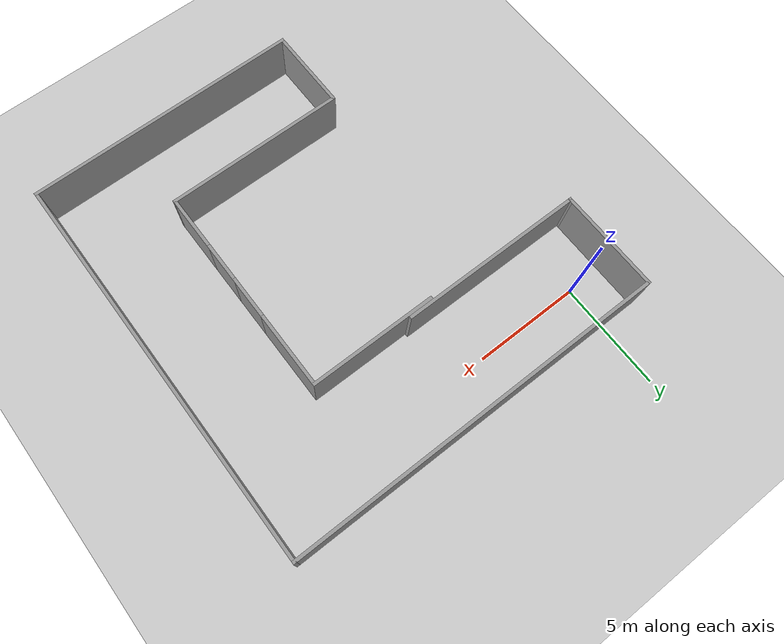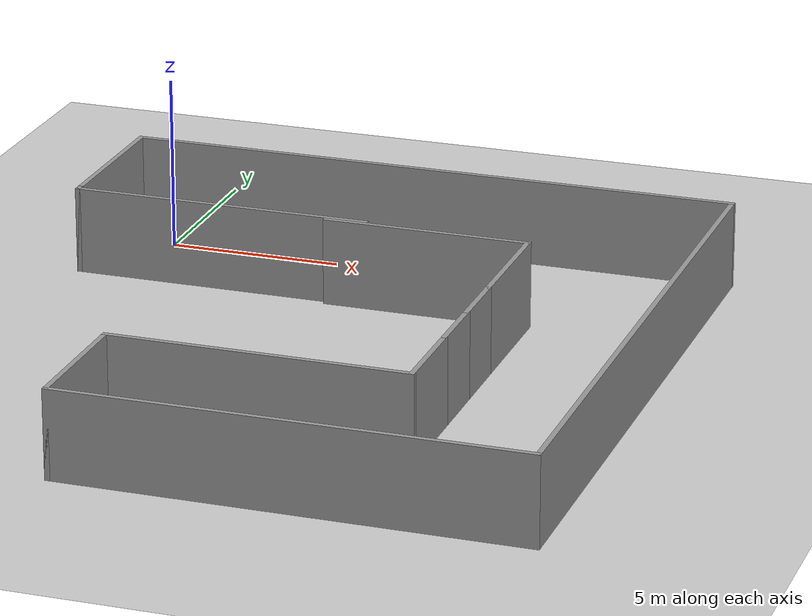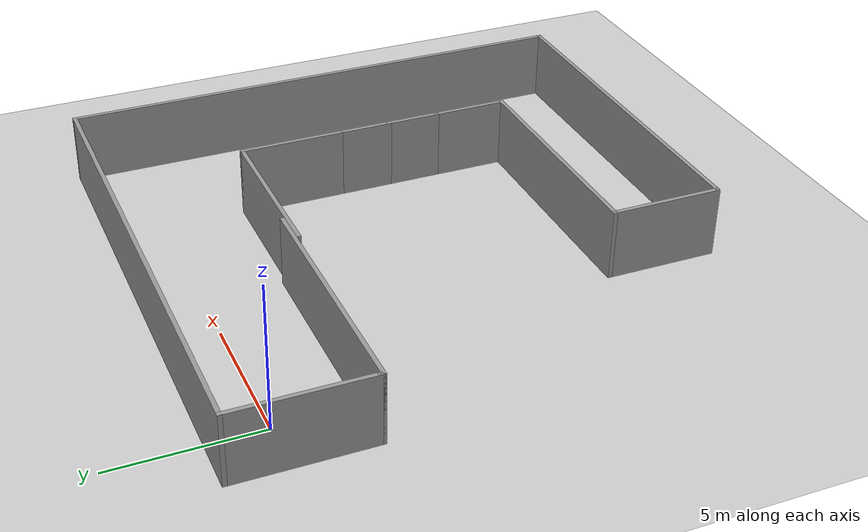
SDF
<sdf version="1.7">
 <world name="default">
  <light name="sun" type="directional">
   <pose>0 0 10 0 -0 0</pose>
   <diffuse>0.8 0.8 0.8 1</diffuse>
   <specular>0.2 0.2 0.2 1</specular>
   <attenuation>
    <range>1000</range>
    <constant>0.9</constant>
    <linear>0.01</linear>
    <quadratic>0.001</quadratic>
   </attenuation>
   <direction>-0.5 0.1 -0.9</direction>
   <spot><inner_angle>0</inner_angle><outer_angle>0</outer_angle><falloff>0</falloff></spot>
  </light>
  <model name="ground_plane">
   <static>1</static>
   <link name="link">
    <collision name="collision">
     <geometry><plane><normal>0 0 1</normal><size>100 100</size></plane></geometry>
     <surface><friction><ode><mu>100</mu><mu2>50</mu2></ode></friction></surface>
    </collision>
    <visual name="visual">
     <cast_shadows>0</cast_shadows>
     <geometry><plane><normal>0 0 1</normal><size>100 100</size></plane></geometry>
     <material>
      <script><uri>file://media/materials/scripts/gazebo.material</uri><name>Gazebo/Grey</name></script>
     </material>
    </visual>
   </link>
  </model>
  <gravity>0 0 -9.8</gravity>
  <magnetic_field>6e-06 2.3e-05 -4.2e-05</magnetic_field>
  <atmosphere type="adiabatic"/>
  <physics type="ode">
   <max_step_size>0.001</max_step_size>
   <real_time_factor>1</real_time_factor>
   <real_time_update_rate>1000</real_time_update_rate>
  </physics>
  <scene><ambient>0.4 0.4 0.4 1</ambient><background>0.7 0.7 0.7 1</background><shadows>1</shadows></scene>
  <spherical_coordinates>
   <surface_model>EARTH_WGS84</surface_model>
   <latitude_deg>0</latitude_deg>
   <longitude_deg>0</longitude_deg>
   <elevation>0</elevation>
   <heading_deg>0</heading_deg>
  </spherical_coordinates>
  <model name="coriddor">
   <pose>7.16406 -7.36954 0 0 -0 0</pose>
   <link name="Wall_0">
    <collision name="Wall_0_Collision">
     <geometry><box><size>6 0.15 2.5</size></box></geometry>
     <pose>0 0 1.25 0 -0 0</pose>
    </collision>
    <visual name="Wall_0_Visual">
     <pose>0 0 1.25 0 -0 0</pose>
     <geometry><box><size>6 0.15 2.5</size></box></geometry>
     <material>
      <script><uri>file://media/materials/scripts/gazebo.material</uri><name>Gazebo/Grey</name></script>
      <ambient>1 1 1 1</ambient>
     </material>
     <meta><layer>0</layer></meta>
    </visual>
    <pose>1.5 4.45 0 0 -0 0</pose>
   </link>
   <link name="Wall_1">
    <collision name="Wall_1_Collision">
     <geometry><box><size>3.75 0.15 2.5</size></box></geometry>
     <pose>0 0 1.25 0 -0 0</pose>
    </collision>
    <visual name="Wall_1_Visual">
     <pose>0 0 1.25 0 -0 0</pose>
     <geometry><box><size>3.75 0.15 2.5</size></box></geometry>
     <material>
      <script><uri>file://media/materials/scripts/gazebo.material</uri><name>Gazebo/Grey</name></script>
      <ambient>1 1 1 1</ambient>
     </material>
     <meta><layer>0</layer></meta>
    </visual>
    <pose>4.425 2.65 0 0 -0 -1.5708</pose>
   </link>
   <link name="Wall_10">
    <collision name="Wall_10_Collision">
     <geometry><box><size>4.75 0.15 2.5</size></box></geometry>
     <pose>0 0 1.25 0 -0 0</pose>
    </collision>
    <visual name="Wall_10_Visual">
     <pose>0 0 1.25 0 -0 0</pose>
     <geometry><box><size>4.75 0.15 2.5</size></box></geometry>
     <material>
      <script><uri>file://media/materials/scripts/gazebo.material</uri><name>Gazebo/Grey</name></script>
      <ambient>1 1 1 1</ambient>
     </material>
     <meta><layer>0</layer></meta>
    </visual>
    <pose>-8.925 7 0 0 -0 -1.5708</pose>
   </link>
   <link name="Wall_11">
    <collision name="Wall_11_Collision">
     <geometry><box><size>0.15 0.15 2.5</size></box></geometry>
     <pose>0 0 1.25 0 -0 0</pose>
    </collision>
    <visual name="Wall_11_Visual">
     <pose>0 0 1.25 0 -0 0</pose>
     <geometry><box><size>0.15 0.15 2.5</size></box></geometry>
     <material>
      <script><uri>file://media/materials/scripts/gazebo.material</uri><name>Gazebo/Grey</name></script>
      <ambient>1 1 1 1</ambient>
     </material>
     <meta><layer>0</layer></meta>
    </visual>
    <pose>-8.925 4.7 0 0 -0 0</pose>
   </link>
   <link name="Wall_12">
    <collision name="Wall_12_Collision">
     <geometry><box><size>0.25 0.15 2.5</size></box></geometry>
     <pose>0 0 1.25 0 -0 0</pose>
    </collision>
    <visual name="Wall_12_Visual">
     <pose>0 0 1.25 0 -0 0</pose>
     <geometry><box><size>0.25 0.15 2.5</size></box></geometry>
     <material>
      <script><uri>file://media/materials/scripts/gazebo.material</uri><name>Gazebo/Grey</name></script>
      <ambient>1 1 1 1</ambient>
     </material>
     <meta><layer>0</layer></meta>
    </visual>
    <pose>-8.925 4.65 0 0 -0 -1.5708</pose>
   </link>
   <link name="Wall_13">
    <collision name="Wall_13_Collision">
     <geometry><box><size>8.75 0.15 2.5</size></box></geometry>
     <pose>0 0 1.25 0 -0 0</pose>
    </collision>
    <visual name="Wall_13_Visual">
     <pose>0 0 1.25 0 -0 0</pose>
     <geometry><box><size>8.75 0.15 2.5</size></box></geometry>
     <material>
      <script><uri>file://media/materials/scripts/gazebo.material</uri><name>Gazebo/Grey</name></script>
      <ambient>1 1 1 1</ambient>
     </material>
     <meta><layer>0</layer></meta>
    </visual>
    <pose>-4.625 4.6 0 0 -0 0</pose>
   </link>
   <link name="Wall_2">
    <collision name="Wall_2_Collision">
     <geometry><box><size>2 0.15 2.5</size></box></geometry>
     <pose>0 0 1.25 0 -0 0</pose>
    </collision>
    <visual name="Wall_2_Visual">
     <pose>0 0 1.25 0 -0 0</pose>
     <geometry><box><size>2 0.15 2.5</size></box></geometry>
     <material>
      <script><uri>file://media/materials/scripts/gazebo.material</uri><name>Gazebo/Grey</name></script>
      <ambient>1 1 1 1</ambient>
     </material>
     <meta><layer>0</layer></meta>
    </visual>
    <pose>4.425 -0.075 0 0 -0 -1.5708</pose>
   </link>
   <link name="Wall_3">
    <collision name="Wall_3_Collision">
     <geometry><box><size>2 0.15 2.5</size></box></geometry>
     <pose>0 0 1.25 0 -0 0</pose>
    </collision>
    <visual name="Wall_3_Visual">
     <pose>0 0 1.25 0 -0 0</pose>
     <geometry><box><size>2 0.15 2.5</size></box></geometry>
     <material>
      <script><uri>file://media/materials/scripts/gazebo.material</uri><name>Gazebo/Grey</name></script>
      <ambient>1 1 1 1</ambient>
     </material>
     <meta><layer>0</layer></meta>
    </visual>
    <pose>4.425 -1.925 0 0 -0 -1.5708</pose>
   </link>
   <link name="Wall_4">
    <collision name="Wall_4_Collision">
     <geometry><box><size>2.75 0.15 2.5</size></box></geometry>
     <pose>0 0 1.25 0 -0 0</pose>
    </collision>
    <visual name="Wall_4_Visual">
     <pose>0 0 1.25 0 -0 0</pose>
     <geometry><box><size>2.75 0.15 2.5</size></box></geometry>
     <material>
      <script><uri>file://media/materials/scripts/gazebo.material</uri><name>Gazebo/Grey</name></script>
      <ambient>1 1 1 1</ambient>
     </material>
     <meta><layer>0</layer></meta>
    </visual>
    <pose>4.425 -4.15 0 0 -0 -1.5708</pose>
   </link>
   <link name="Wall_5">
    <collision name="Wall_5_Collision">
     <geometry><box><size>8.5 0.15 2.5</size></box></geometry>
     <pose>0 0 1.25 0 -0 0</pose>
    </collision>
    <visual name="Wall_5_Visual">
     <pose>0 0 1.25 0 -0 0</pose>
     <geometry><box><size>8.5 0.15 2.5</size></box></geometry>
     <material>
      <script><uri>file://media/materials/scripts/gazebo.material</uri><name>Gazebo/Grey</name></script>
      <ambient>1 1 1 1</ambient>
     </material>
     <meta><layer>0</layer></meta>
    </visual>
    <pose>0.25 -5.45 0 0 -0 3.14159</pose>
   </link>
   <link name="Wall_6">
    <collision name="Wall_6_Collision">
     <geometry><box><size>4 0.15 2.5</size></box></geometry>
     <pose>0 0 1.25 0 -0 0</pose>
    </collision>
    <visual name="Wall_6_Visual">
     <pose>0 0 1.25 0 -0 0</pose>
     <geometry><box><size>4 0.15 2.5</size></box></geometry>
     <material>
      <script><uri>file://media/materials/scripts/gazebo.material</uri><name>Gazebo/Grey</name></script>
      <ambient>1 1 1 1</ambient>
     </material>
     <meta><layer>0</layer></meta>
    </visual>
    <pose>-3.925 -7.375 0 0 -0 -1.5708</pose>
   </link>
   <link name="Wall_7">
    <collision name="Wall_7_Collision">
     <geometry><box><size>13 0.15 2.5</size></box></geometry>
     <pose>0 0 1.25 0 -0 0</pose>
    </collision>
    <visual name="Wall_7_Visual">
     <pose>0 0 1.25 0 -0 0</pose>
     <geometry><box><size>13 0.15 2.5</size></box></geometry>
     <material>
      <script><uri>file://media/materials/scripts/gazebo.material</uri><name>Gazebo/Grey</name></script>
      <ambient>1 1 1 1</ambient>
     </material>
     <meta><layer>0</layer></meta>
    </visual>
    <pose>2.5 -9.3 0 0 -0 0</pose>
   </link>
   <link name="Wall_8">
    <collision name="Wall_8_Collision">
     <geometry><box><size>18.75 0.15 2.5</size></box></geometry>
     <pose>0 0 1.25 0 -0 0</pose>
    </collision>
    <visual name="Wall_8_Visual">
     <pose>0 0 1.25 0 -0 0</pose>
     <geometry><box><size>18.75 0.15 2.5</size></box></geometry>
     <material>
      <script><uri>file://media/materials/scripts/gazebo.material</uri><name>Gazebo/Grey</name></script>
      <ambient>1 1 1 1</ambient>
     </material>
     <meta><layer>0</layer></meta>
    </visual>
    <pose>8.925 -0 0 0 -0 1.5708</pose>
   </link>
   <link name="Wall_9">
    <collision name="Wall_9_Collision">
     <geometry><box><size>18 0.15 2.5</size></box></geometry>
     <pose>0 0 1.25 0 -0 0</pose>
    </collision>
    <visual name="Wall_9_Visual">
     <pose>0 0 1.25 0 -0 0</pose>
     <geometry><box><size>18 0.15 2.5</size></box></geometry>
     <material>
      <script><uri>file://media/materials/scripts/gazebo.material</uri><name>Gazebo/Grey</name></script>
      <ambient>1 1 1 1</ambient>
     </material>
     <meta><layer>0</layer></meta>
    </visual>
    <pose>0 9.3 0 0 -0 3.14159</pose>
   </link>
   <static>1</static>
  </model>
 </world>
</sdf>
